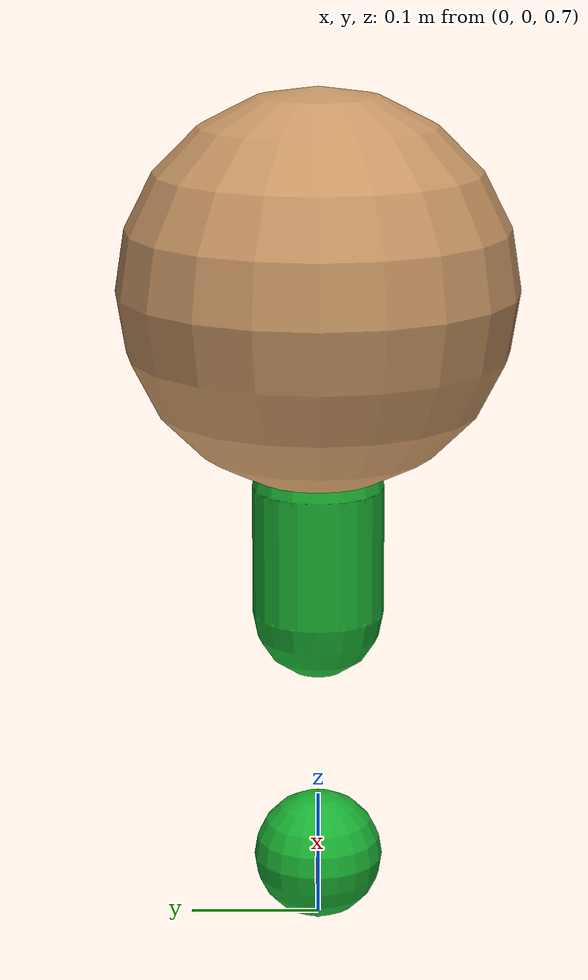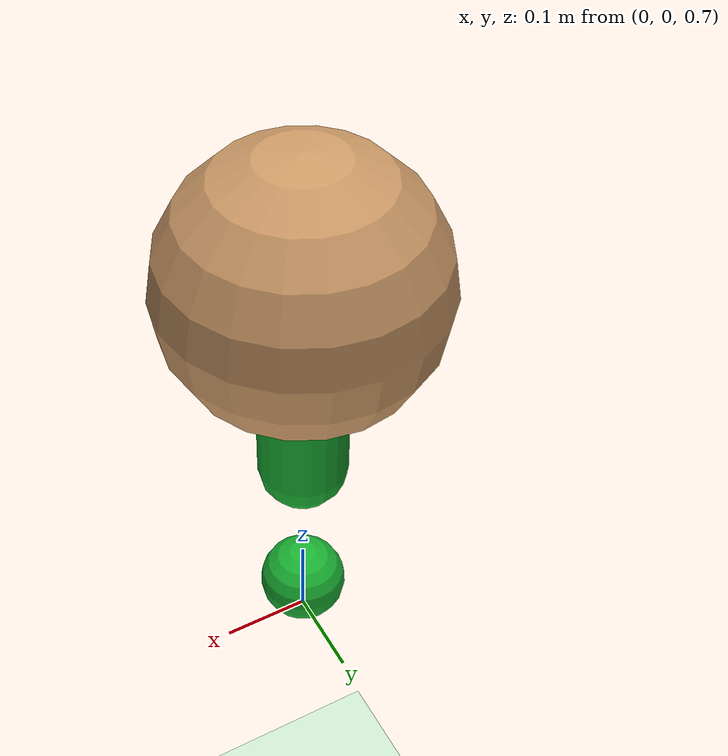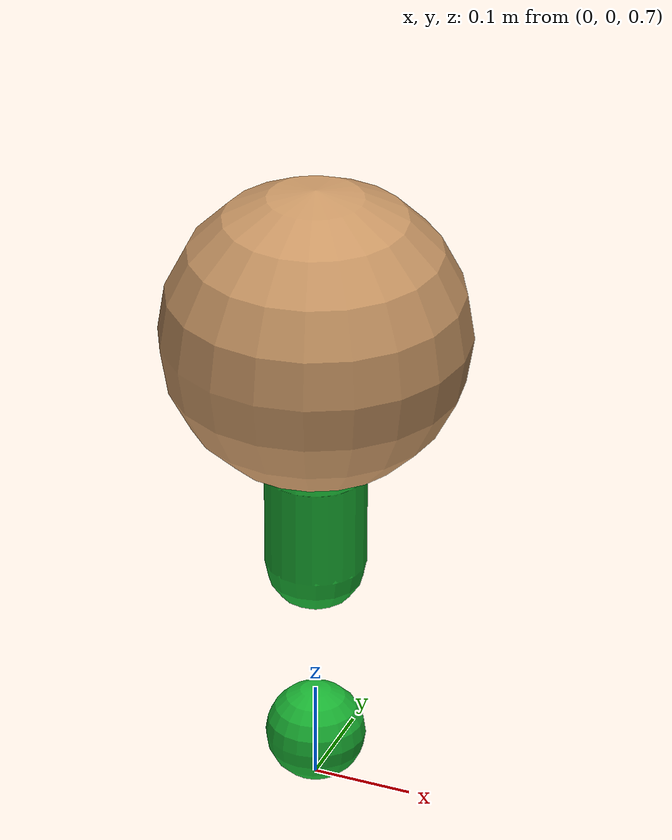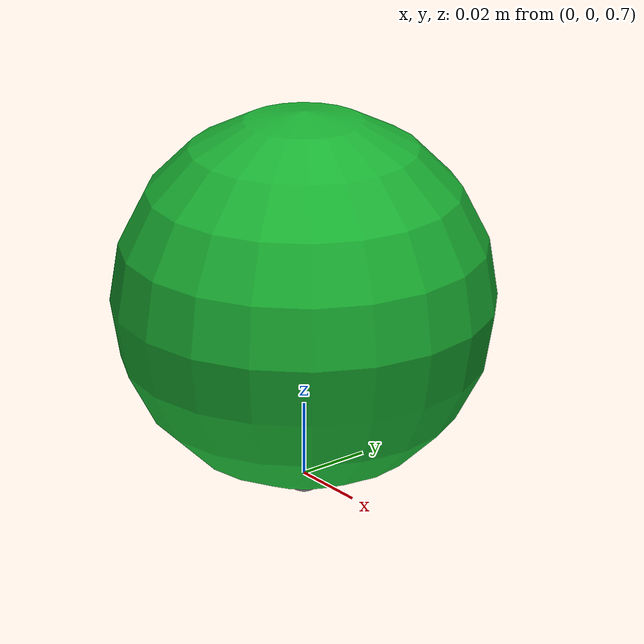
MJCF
<mujoco model="SLIP">
  <compiler inertiafromgeom="true" angle="degree" />

  <default>
    <joint limited='true' damping='1' armature='1' />
    <geom contype='7' conaffinity='7' condim='1' rgba='0.8 0.6 .4 1' margin="0.001" solref=".005 1" solimp=".8 .8 .01" material="geom" />
    <motor ctrlrange='-.4 .4' ctrllimited='true' />
  </default>

  <option timestep="0.001" integrator="Euler" gravity="0 0 -9.806"/>
  <asset>
    <texture type="skybox" builtin="gradient" width="100" height="100" rgb1="1 1 1" rgb2="0 0 0" />
    <texture name="texgeom" type="cube" builtin="flat" mark="cross" width="127" height="1278" rgb1="0.8 0.6 0.4" rgb2="0.8 0.6 0.4" markrgb="1 1 1" random="0.01" />
    <texture name="texplane" type="2d" builtin="checker" rgb1="0 0 0" rgb2="0.8 0.8 0.8" width="100" height="100" />
    <material name='MatPlane' texture="texplane" shininess="1" texrepeat="60 60" specular="1"  reflectance="0.5" />
    <material name='geom' texture="texgeom" texuniform="true" />
  </asset>
  <worldbody>
    <light directional="true" cutoff="100" exponent="1" diffuse="1 1 1" specular=".1 .1 .1" pos="0 0 1.3" dir="-0 0 -1.3" />
    <geom name='floor' contype='7' conaffinity='7' material="MatPlane" pos='0 0 0' size='40 40 40' type='plane' rgba='0.8 0.9 0.8 1' condim='3' friction="2.0" />

    <body name="torso" pos="0 0 1.2">
      <joint name='rootx' type='slide' axis='1 0 0' pos='0 0 0' limited='false' range='-0.001 0.001' damping='0' armature='0' stiffness='0' />
      <joint name='rootz' type='slide' axis='0 0 1' pos='0 0 0' limited='false' range='0.749 0.751' damping='0' armature='0' stiffness='0' ref='1.2'/>
      <joint name='rot' type='hinge' axis='0 1 0' pos='0 0 0' limited='false' damping='0' armature='0' stiffness='0' />

      <site name="com_accel" type="sphere" pos="0 0 -0.05" size="0.005"/>

      <geom name="torso_geom" type="sphere" size="0.15" friction="0.9"/>
      <body name="left_leg" pos="0 0 -0.15">
        <joint name='left_leg_tau' type = 'hinge' axis='0 1 0' pos='0 0 0.15' limited='true' range='-30 30' damping='0' armature='0.0' stiffness='0' />
	  	<joint name='left_leg_motor' type='slide' axis='0 0 1' pos='0 0 0' limited='true' range='-0.4 0.0' damping='0' armature='0.0' stiffness='0'/>
	    <geom name="left_leg_geom"  type="capsule" contype='2' conaffinity='2' fromto="0 0 0 0 0 -0.1" size="0.05" friction="0.9" rgba="0.1 0.7 0.2 1" />
	    <site name="left_accel" type="sphere" pos="0 0 -0.35" size="0.005"/>

	    <body name="left_toe" pos="0 0 -0.3">
	    	<joint name='left_spring' type='slide' axis='0 0 1' pos='0 0 0' limited='true' range='-0.1 0.3' damping='100' armature='0' stiffness='5000'/>
	        <geom name="left_toe_geom"  contype='2' conaffinity='2' type="sphere" size="0.05" friction="0.1" rgba="0.1 0.7 0.2 1"/>
        	<site name="left_contact" type="sphere" pos="0 0 -0.05" size="0.005"/>
        </body>
      </body>
      <body name="right_leg" pos="0 0 -0.15">
        <joint name='right_leg_tau' type = 'hinge' axis='0 1 0' pos='0 0 0.15' limited='true' range='-30 30' damping='0' armature='0.0' stiffness='0' />
	  	<joint name='right_leg_motor' type='slide' axis='0 0 1' pos='0 0 0' limited='true' range='-0.4 0.0' damping='0' armature='0.0' stiffness='0' />
	    <geom name="right_leg_geom"  contype='4' conaffinity='4' type="capsule" fromto="0 0 0 0 0 -0.1" size="0.05" friction="0.9" rgba="0.7 0.2 0.1 1"/>
	    <site name="right_accel" type="sphere" pos="0 0 -0.35" size="0.005"/>
	    <body name="right_toe" pos="0 0 -0.3">
	    	<joint name='right_spring' type='slide' axis='0 0 1' pos='0 0 0' limited='true' range='-0.1 0.3' damping='100' armature='0' stiffness='5000' />
	        <geom name="right_toe_geom"  contype='4' conaffinity='4' type="sphere" size="0.05" friction="0.1" rgba="0.7 0.2 0.1 1"/>
			<site name="right_contact" type="sphere" pos="0 0 -0.05" size="0.005"/>
        </body>
      </body>

    </body>
  </worldbody>

  <actuator>
    <motor joint="left_leg_tau" ctrlrange="-200.0 200.0" ctrllimited="true" />
    <motor joint="left_leg_motor" ctrlrange="-400.0 400.0" ctrllimited="true" />
    <motor joint="right_leg_tau" ctrlrange="-200.0 200.0" ctrllimited="true" />
    <motor joint="right_leg_motor" ctrlrange="-400.0 400.0" ctrllimited="true" />
  </actuator>
</mujoco>
